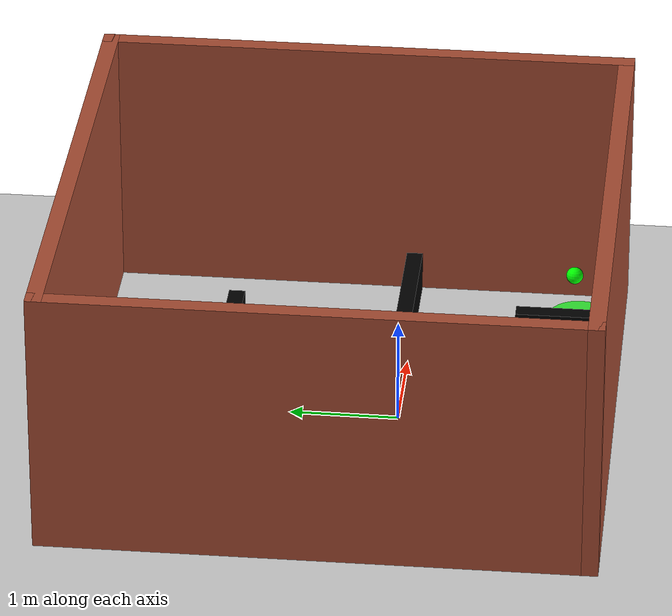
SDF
<sdf version='1.7'>
  <world name='default'>
    <include>
      <uri>model://sun</uri>
    </include>

    <include>
      <uri>model://ground_plane</uri>
    </include>

    <physics type='ode'>
      <max_step_size>0.001</max_step_size>
      <real_time_factor>1</real_time_factor>
      <real_time_update_rate>1000</real_time_update_rate>
    </physics>

    <plugin name="gazebo_ros_state" filename="libgazebo_ros_state.so">
      <ros><namespace>/</namespace></ros>
    </plugin>

    <model name='maze_simple'>
      <static>1</static>
      <pose>0.31 0.52 0 0 0 0</pose>

      <link name='Wall_0'>
        <pose>-0.268 2.425 0 0 0 0</pose>
        <collision name='Wall_0_Collision'><geometry><box><size>5 0.15 2.5</size></box></geometry></collision>
        <visual name='Wall_0_Visual'><pose>0 0 1.25 0 0 0</pose><geometry><box><size>5 0.15 2.5</size></box></geometry>
          <material><script><uri>file://media/materials/scripts/gazebo.material</uri><name>Gazebo/Bricks</name></script><ambient>1 1 1 1</ambient></material>
        </visual>
      </link>

      <link name='Wall_1'>
        <pose>2.156 0 0 0 0 -1.5708</pose>
        <collision name='Wall_1_Collision'><geometry><box><size>5 0.15 2.5</size></box></geometry></collision>
        <visual name='Wall_1_Visual'><pose>0 0 1.25 0 0 0</pose><geometry><box><size>5 0.15 2.5</size></box></geometry>
          <material><script><uri>file://media/materials/scripts/gazebo.material</uri><name>Gazebo/Bricks</name></script><ambient>1 1 1 1</ambient></material>
        </visual>
      </link>

      <link name='Wall_2'>
        <pose>-0.268 -2.425 0 0 0 3.14159</pose>
        <collision name='Wall_2_Collision'><geometry><box><size>5 0.15 2.5</size></box></geometry></collision>
        <visual name='Wall_2_Visual'><pose>0 0 1.25 0 0 0</pose><geometry><box><size>5 0.15 2.5</size></box></geometry>
          <material><script><uri>file://media/materials/scripts/gazebo.material</uri><name>Gazebo/Bricks</name></script><ambient>1 1 1 1</ambient></material>
        </visual>
      </link>

      <link name='Wall_3'>
        <pose>-2.693 0 0 0 0 1.5708</pose>
        <collision name='Wall_3_Collision'><geometry><box><size>5 0.15 2.5</size></box></geometry></collision>
        <visual name='Wall_3_Visual'><pose>0 0 1.25 0 0 0</pose><geometry><box><size>5 0.15 2.5</size></box></geometry>
          <material><script><uri>file://media/materials/scripts/gazebo.material</uri><name>Gazebo/Bricks</name></script><ambient>1 1 1 1</ambient></material>
        </visual>
      </link>

      <link name='Wall_12'><pose>-2.375 1.539 0 0 0 0</pose><collision name='Wall_12_Collision'><geometry><box><size>0.75 0.15 0.75</size></box></geometry></collision><visual name='Wall_12_Visual'><geometry><box><size>0.75 0.15 0.75</size></box></geometry><material><ambient>0 0 0 1</ambient><diffuse>0 0 0 1</diffuse></material></visual></link>
      <link name='Wall_16'><pose>0.458 1.143 0 0 0 0</pose><collision name='Wall_16_Collision'><geometry><box><size>1.5 0.15 0.75</size></box></geometry></collision><visual name='Wall_16_Visual'><geometry><box><size>1.5 0.15 0.75</size></box></geometry><material><ambient>0 0 0 1</ambient><diffuse>0 0 0 1</diffuse></material></visual></link>
      <link name='Wall_19'><pose>1.105 -1.999 0 0 0 1.5708</pose><collision name='Wall_19_Collision'><geometry><box><size>1 0.15 0.75</size></box></geometry></collision><visual name='Wall_19_Visual'><geometry><box><size>1 0.15 0.75</size></box></geometry><material><ambient>0 0 0 1</ambient><diffuse>0 0 0 1</diffuse></material></visual></link>
      <link name='Wall_21'><pose>1.432 -0.463 0 0 0 3.14159</pose><collision name='Wall_21_Collision'><geometry><box><size>1.5 0.15 0.75</size></box></geometry></collision><visual name='Wall_21_Visual'><geometry><box><size>1.5 0.15 0.75</size></box></geometry><material><ambient>0 0 0 1</ambient><diffuse>0 0 0 1</diffuse></material></visual></link>
      <link name='Wall_26'><pose>-0.624 0.253 0 0 0 0</pose><collision name='Wall_26_Collision'><geometry><box><size>1 0.15 0.75</size></box></geometry></collision><visual name='Wall_26_Visual'><geometry><box><size>1 0.15 0.75</size></box></geometry><material><ambient>0 0 0 1</ambient><diffuse>0 0 0 1</diffuse></material></visual></link>
      <link name='Wall_29'><pose>-0.489 -1.510 0 0 0 0</pose><collision name='Wall_29_Collision'><geometry><box><size>1 0.15 0.75</size></box></geometry></collision><visual name='Wall_29_Visual'><geometry><box><size>1 0.15 0.75</size></box></geometry><material><ambient>0 0 0 1</ambient><diffuse>0 0 0 1</diffuse></material></visual></link>
      <link name='Wall_6'><pose>-1.764 -0.960 0 0 0 -1.5708</pose><collision name='Wall_6_Collision'><geometry><box><size>1.25 0.15 0.75</size></box></geometry></collision><visual name='Wall_6_Visual'><geometry><box><size>1.25 0.15 0.75</size></box></geometry><material><ambient>0 0 0 1</ambient><diffuse>0 0 0 1</diffuse></material></visual></link>
      <link name='Wall_8'><pose>-0.8 1.953 0 0 0 -1.5708</pose><collision name='Wall_8_Collision'><geometry><box><size>1 0.15 0.75</size></box></geometry></collision><visual name='Wall_8_Visual'><geometry><box><size>1 0.15 0.75</size></box></geometry><material><ambient>0 0 0 1</ambient><diffuse>0 0 0 1</diffuse></material></visual></link>
    </model>

    <model name='target_mark'>
      <static>1</static>
      <pose>1.95 -1.55 0.01 0 0 0</pose>
      <link name='link_0'>
        <visual name='visual'>
          <geometry><cylinder><radius>0.3</radius><length>0.02</length></cylinder></geometry>
          <material>
            <ambient>0.1 0.8 0.1 1</ambient>
            <diffuse>0.2 0.9 0.2 1</diffuse>
          </material>
        </visual>
      </link>
    </model>

    <model name='target_beacon'>
      <static>1</static>
      <pose>1.90 -1.5 0.5 0 0 0</pose>
      <link name='link_1'>
        <visual name='visual'>
          <geometry>
            <sphere>
              <radius>0.08</radius> </sphere>
          </geometry>
          <material>
            <ambient>0 1 0 1</ambient>
            <diffuse>0 1 0 1</diffuse>
            <specular>0.1 0.1 0.1 1</specular>
            <emissive>0 0.5 0 1</emissive> </material>
        </visual>
        <collision name='collision'>
          <geometry>
            <sphere><radius>0.15</radius></sphere>
          </geometry>
        </collision>
      </link>
    </model>

    <gui fullscreen='0'>
      <camera name='user_camera'>
        <pose>0.86 2.23 26.28 0 1.47 1.55</pose>
        <view_controller>orbit</view_controller>
      </camera>
    </gui>
  </world>
</sdf>
